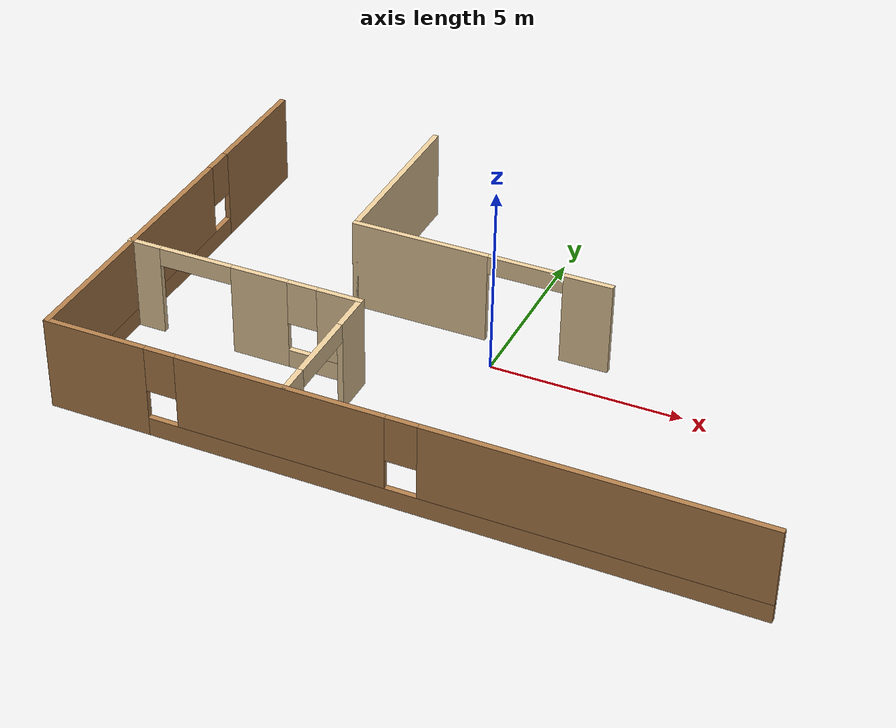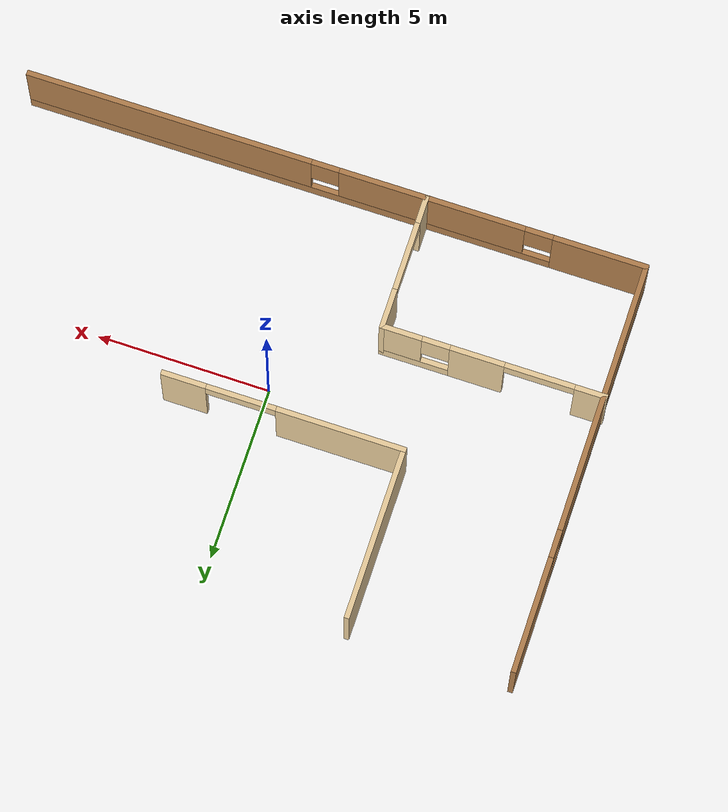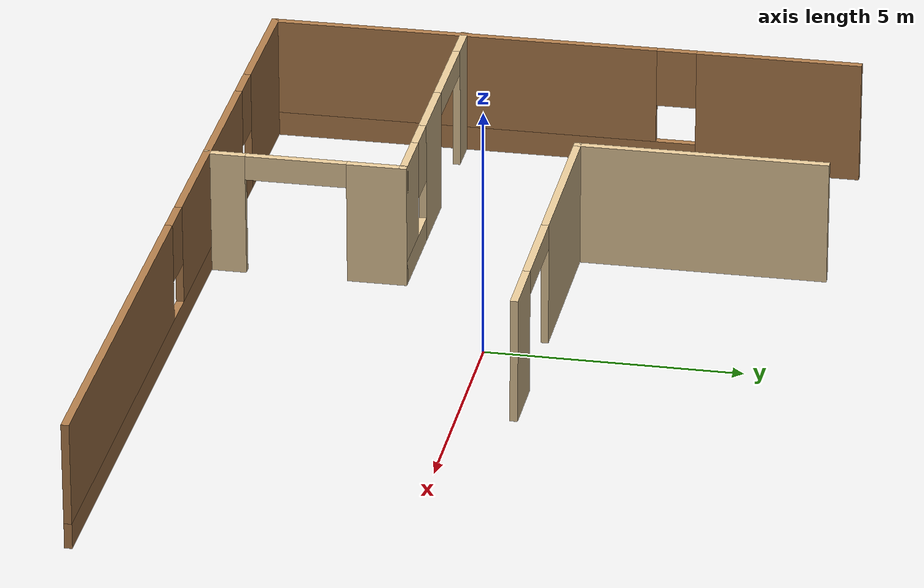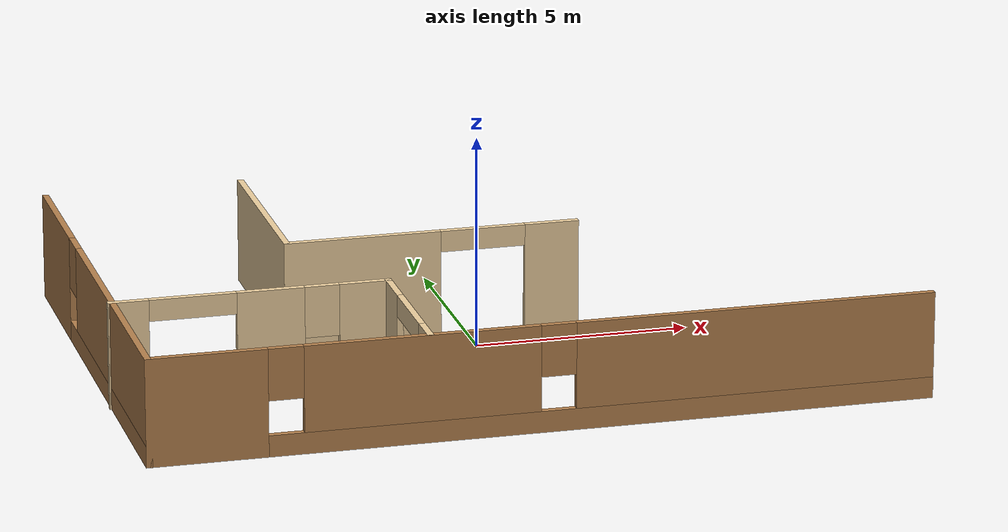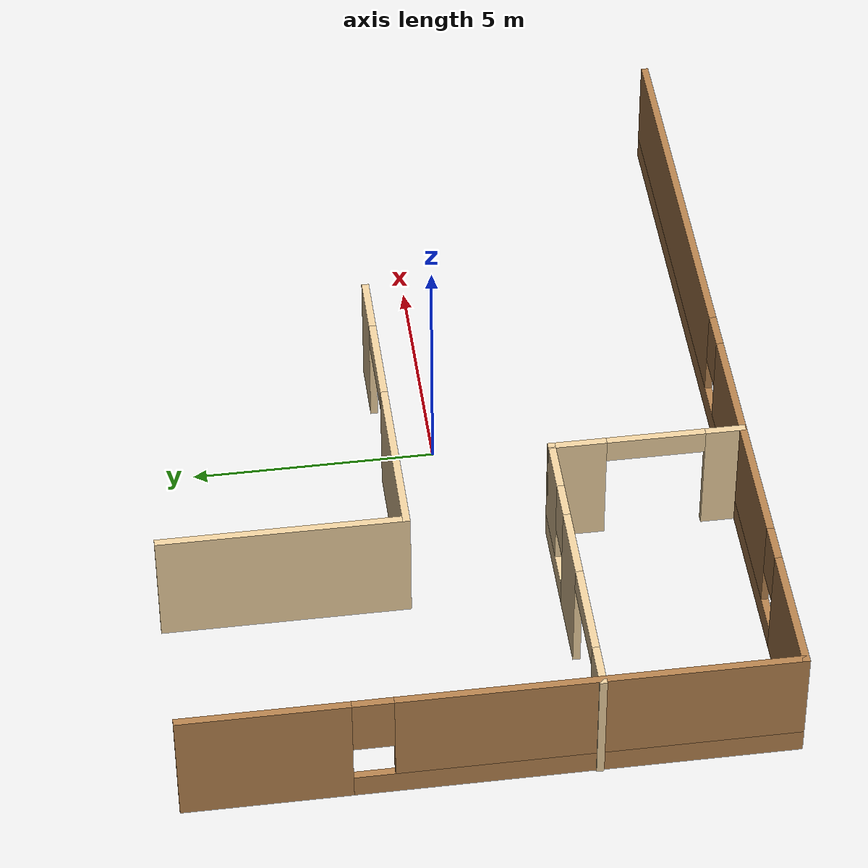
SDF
<sdf version="1.6">
 <model name="mybuilding">
  <link name="Wall_25">
   <pose>-8.90711 0 0 0 0 -1.5708</pose>
   <visual name="Wall_25_Visual_0">
    <pose>-4.33953 0 1.25 0 -0 0</pose>
    <geometry><box><size>3.32095 0.15 2.5</size></box></geometry>
    <material>
     <script><uri>file://media/materials/scripts/gazebo.material</uri><name>Gazebo/Wood</name></script>
     <ambient>1 1 1 1</ambient>
     <shader type="pixel"/>
     <diffuse>1 1 1 1</diffuse>
     <specular>0.2 0.2 0.2 1</specular>
     <emissive>0 0 0 1</emissive>
    </material>
    <meta><layer>0</layer></meta>
   </visual>
   <visual name="Wall_25_Visual_1">
    <pose>1.66047 0 0.25 0 -0 0</pose>
    <geometry><box><size>8.67905 0.15 0.5</size></box></geometry>
    <material>
     <script><uri>file://media/materials/scripts/gazebo.material</uri><name>Gazebo/Wood</name></script>
     <ambient>1 1 1 1</ambient>
     <shader type="pixel"/>
     <diffuse>1 1 1 1</diffuse>
     <specular>0.2 0.2 0.2 1</specular>
     <emissive>0 0 0 1</emissive>
    </material>
    <meta><layer>0</layer></meta>
   </visual>
   <visual name="Wall_25_Visual_2">
    <pose>2.06047 0 1.5 0 -0 0</pose>
    <geometry><box><size>7.87905 0.15 2</size></box></geometry>
    <material>
     <script><uri>file://media/materials/scripts/gazebo.material</uri><name>Gazebo/Wood</name></script>
     <ambient>1 1 1 1</ambient>
     <shader type="pixel"/>
     <diffuse>1 1 1 1</diffuse>
     <specular>0.2 0.2 0.2 1</specular>
     <emissive>0 0 0 1</emissive>
    </material>
    <meta><layer>0</layer></meta>
   </visual>
   <visual name="Wall_25_Visual_3">
    <pose>-2.27905 0 1.9 0 -0 0</pose>
    <geometry><box><size>0.8 0.15 1.2</size></box></geometry>
    <material>
     <script><uri>file://media/materials/scripts/gazebo.material</uri><name>Gazebo/Wood</name></script>
     <ambient>1 1 1 1</ambient>
     <shader type="pixel"/>
     <diffuse>1 1 1 1</diffuse>
     <specular>0.2 0.2 0.2 1</specular>
     <emissive>0 0 0 1</emissive>
    </material>
    <meta><layer>0</layer></meta>
   </visual>
   <collision name="Wall_25_Collision_0">
    <pose>-4.33953 0 1.25 0 -0 0</pose>
    <geometry><box><size>3.32095 0.15 2.5</size></box></geometry>
    <surface>
     <friction>
      <ode><mu>1</mu><mu2>1</mu2><fdir1>0 0 0</fdir1><slip1>0</slip1><slip2>0</slip2></ode>
      <torsional>
       <coefficient>1</coefficient>
       <patch_radius>0</patch_radius>
       <surface_radius>0</surface_radius>
       <use_patch_radius>1</use_patch_radius>
       <ode><slip>0</slip></ode>
      </torsional>
     </friction>
     <bounce><restitution_coefficient>0</restitution_coefficient><threshold>1e+06</threshold></bounce>
     <contact>
      <collide_without_contact>0</collide_without_contact>
      <collide_without_contact_bitmask>1</collide_without_contact_bitmask>
      <collide_bitmask>1</collide_bitmask>
      <ode>
       <soft_cfm>0</soft_cfm>
       <soft_erp>0.2</soft_erp>
       <kp>1e+13</kp>
       <kd>1</kd>
       <max_vel>0.01</max_vel>
       <min_depth>0</min_depth>
      </ode>
      <bullet>
       <split_impulse>1</split_impulse>
       <split_impulse_penetration_threshold>-0.01</split_impulse_penetration_threshold>
       <soft_cfm>0</soft_cfm>
       <soft_erp>0.2</soft_erp>
       <kp>1e+13</kp>
       <kd>1</kd>
      </bullet>
     </contact>
    </surface>
   </collision>
   <collision name="Wall_25_Collision_1">
    <pose>1.66047 0 0.25 0 -0 0</pose>
    <geometry><box><size>8.67905 0.15 0.5</size></box></geometry>
    <surface>
     <friction>
      <ode><mu>1</mu><mu2>1</mu2><fdir1>0 0 0</fdir1><slip1>0</slip1><slip2>0</slip2></ode>
      <torsional>
       <coefficient>1</coefficient>
       <patch_radius>0</patch_radius>
       <surface_radius>0</surface_radius>
       <use_patch_radius>1</use_patch_radius>
       <ode><slip>0</slip></ode>
      </torsional>
     </friction>
     <bounce><restitution_coefficient>0</restitution_coefficient><threshold>1e+06</threshold></bounce>
     <contact>
      <collide_without_contact>0</collide_without_contact>
      <collide_without_contact_bitmask>1</collide_without_contact_bitmask>
      <collide_bitmask>1</collide_bitmask>
      <ode>
       <soft_cfm>0</soft_cfm>
       <soft_erp>0.2</soft_erp>
       <kp>1e+13</kp>
       <kd>1</kd>
       <max_vel>0.01</max_vel>
       <min_depth>0</min_depth>
      </ode>
      <bullet>
       <split_impulse>1</split_impulse>
       <split_impulse_penetration_threshold>-0.01</split_impulse_penetration_threshold>
       <soft_cfm>0</soft_cfm>
       <soft_erp>0.2</soft_erp>
       <kp>1e+13</kp>
       <kd>1</kd>
      </bullet>
     </contact>
    </surface>
   </collision>
   <collision name="Wall_25_Collision_2">
    <pose>2.06047 0 1.5 0 -0 0</pose>
    <geometry><box><size>7.87905 0.15 2</size></box></geometry>
    <surface>
     <friction>
      <ode><mu>1</mu><mu2>1</mu2><fdir1>0 0 0</fdir1><slip1>0</slip1><slip2>0</slip2></ode>
      <torsional>
       <coefficient>1</coefficient>
       <patch_radius>0</patch_radius>
       <surface_radius>0</surface_radius>
       <use_patch_radius>1</use_patch_radius>
       <ode><slip>0</slip></ode>
      </torsional>
     </friction>
     <bounce><restitution_coefficient>0</restitution_coefficient><threshold>1e+06</threshold></bounce>
     <contact>
      <collide_without_contact>0</collide_without_contact>
      <collide_without_contact_bitmask>1</collide_without_contact_bitmask>
      <collide_bitmask>1</collide_bitmask>
      <ode>
       <soft_cfm>0</soft_cfm>
       <soft_erp>0.2</soft_erp>
       <kp>1e+13</kp>
       <kd>1</kd>
       <max_vel>0.01</max_vel>
       <min_depth>0</min_depth>
      </ode>
      <bullet>
       <split_impulse>1</split_impulse>
       <split_impulse_penetration_threshold>-0.01</split_impulse_penetration_threshold>
       <soft_cfm>0</soft_cfm>
       <soft_erp>0.2</soft_erp>
       <kp>1e+13</kp>
       <kd>1</kd>
      </bullet>
     </contact>
    </surface>
   </collision>
   <collision name="Wall_25_Collision_3">
    <pose>-2.27905 0 1.9 0 -0 0</pose>
    <geometry><box><size>0.8 0.15 1.2</size></box></geometry>
    <surface>
     <friction>
      <ode><mu>1</mu><mu2>1</mu2><fdir1>0 0 0</fdir1><slip1>0</slip1><slip2>0</slip2></ode>
      <torsional>
       <coefficient>1</coefficient>
       <patch_radius>0</patch_radius>
       <surface_radius>0</surface_radius>
       <use_patch_radius>1</use_patch_radius>
       <ode><slip>0</slip></ode>
      </torsional>
     </friction>
     <bounce><restitution_coefficient>0</restitution_coefficient><threshold>1e+06</threshold></bounce>
     <contact>
      <collide_without_contact>0</collide_without_contact>
      <collide_without_contact_bitmask>1</collide_without_contact_bitmask>
      <collide_bitmask>1</collide_bitmask>
      <ode>
       <soft_cfm>0</soft_cfm>
       <soft_erp>0.2</soft_erp>
       <kp>1e+13</kp>
       <kd>1</kd>
       <max_vel>0.01</max_vel>
       <min_depth>0</min_depth>
      </ode>
      <bullet>
       <split_impulse>1</split_impulse>
       <split_impulse_penetration_threshold>-0.01</split_impulse_penetration_threshold>
       <soft_cfm>0</soft_cfm>
       <soft_erp>0.2</soft_erp>
       <kp>1e+13</kp>
       <kd>1</kd>
      </bullet>
     </contact>
    </surface>
   </collision>
  </link>
  <link name="Wall_26">
   <pose>0.01789 -5.925 0 0 -0 0</pose>
   <visual name="Wall_26_Visual_0">
    <pose>-7.63172 0 1.25 0 -0 0</pose>
    <geometry><box><size>2.73657 0.15 2.5</size></box></geometry>
    <material>
     <script><uri>file://media/materials/scripts/gazebo.material</uri><name>Gazebo/Wood</name></script>
     <ambient>1 1 1 1</ambient>
     <shader type="pixel"/>
     <diffuse>1 1 1 1</diffuse>
     <specular>0.2 0.2 0.2 1</specular>
     <emissive>0 0 0 1</emissive>
    </material>
    <meta><layer>0</layer></meta>
   </visual>
   <visual name="Wall_26_Visual_1">
    <pose>1.36828 0 0.25 0 -0 0</pose>
    <geometry><box><size>15.2634 0.15 0.5</size></box></geometry>
    <material>
     <script><uri>file://media/materials/scripts/gazebo.material</uri><name>Gazebo/Wood</name></script>
     <ambient>1 1 1 1</ambient>
     <shader type="pixel"/>
     <diffuse>1 1 1 1</diffuse>
     <specular>0.2 0.2 0.2 1</specular>
     <emissive>0 0 0 1</emissive>
    </material>
    <meta><layer>0</layer></meta>
   </visual>
   <visual name="Wall_26_Visual_2">
    <pose>-2.78311 0 1.5 0 -0 0</pose>
    <geometry><box><size>5.36064 0.15 2</size></box></geometry>
    <material>
     <script><uri>file://media/materials/scripts/gazebo.material</uri><name>Gazebo/Wood</name></script>
     <ambient>1 1 1 1</ambient>
     <shader type="pixel"/>
     <diffuse>1 1 1 1</diffuse>
     <specular>0.2 0.2 0.2 1</specular>
     <emissive>0 0 0 1</emissive>
    </material>
    <meta><layer>0</layer></meta>
   </visual>
   <visual name="Wall_26_Visual_3">
    <pose>4.8486 0 1.5 0 -0 0</pose>
    <geometry><box><size>8.3028 0.15 2</size></box></geometry>
    <material>
     <script><uri>file://media/materials/scripts/gazebo.material</uri><name>Gazebo/Wood</name></script>
     <ambient>1 1 1 1</ambient>
     <shader type="pixel"/>
     <diffuse>1 1 1 1</diffuse>
     <specular>0.2 0.2 0.2 1</specular>
     <emissive>0 0 0 1</emissive>
    </material>
    <meta><layer>0</layer></meta>
   </visual>
   <visual name="Wall_26_Visual_4">
    <pose>-5.86343 0 1.9 0 -0 0</pose>
    <geometry><box><size>0.8 0.15 1.2</size></box></geometry>
    <material>
     <script><uri>file://media/materials/scripts/gazebo.material</uri><name>Gazebo/Wood</name></script>
     <ambient>1 1 1 1</ambient>
     <shader type="pixel"/>
     <diffuse>1 1 1 1</diffuse>
     <specular>0.2 0.2 0.2 1</specular>
     <emissive>0 0 0 1</emissive>
    </material>
    <meta><layer>0</layer></meta>
   </visual>
   <visual name="Wall_26_Visual_5">
    <pose>0.297204 0 1.9 0 -0 0</pose>
    <geometry><box><size>0.8 0.15 1.2</size></box></geometry>
    <material>
     <script><uri>file://media/materials/scripts/gazebo.material</uri><name>Gazebo/Wood</name></script>
     <ambient>1 1 1 1</ambient>
     <shader type="pixel"/>
     <diffuse>1 1 1 1</diffuse>
     <specular>0.2 0.2 0.2 1</specular>
     <emissive>0 0 0 1</emissive>
    </material>
    <meta><layer>0</layer></meta>
   </visual>
   <collision name="Wall_26_Collision_0">
    <pose>-7.63172 0 1.25 0 -0 0</pose>
    <geometry><box><size>2.73657 0.15 2.5</size></box></geometry>
    <surface>
     <friction>
      <ode><mu>1</mu><mu2>1</mu2><fdir1>0 0 0</fdir1><slip1>0</slip1><slip2>0</slip2></ode>
      <torsional>
       <coefficient>1</coefficient>
       <patch_radius>0</patch_radius>
       <surface_radius>0</surface_radius>
       <use_patch_radius>1</use_patch_radius>
       <ode><slip>0</slip></ode>
      </torsional>
     </friction>
     <bounce><restitution_coefficient>0</restitution_coefficient><threshold>1e+06</threshold></bounce>
     <contact>
      <collide_without_contact>0</collide_without_contact>
      <collide_without_contact_bitmask>1</collide_without_contact_bitmask>
      <collide_bitmask>1</collide_bitmask>
      <ode>
       <soft_cfm>0</soft_cfm>
       <soft_erp>0.2</soft_erp>
       <kp>1e+13</kp>
       <kd>1</kd>
       <max_vel>0.01</max_vel>
       <min_depth>0</min_depth>
      </ode>
      <bullet>
       <split_impulse>1</split_impulse>
       <split_impulse_penetration_threshold>-0.01</split_impulse_penetration_threshold>
       <soft_cfm>0</soft_cfm>
       <soft_erp>0.2</soft_erp>
       <kp>1e+13</kp>
       <kd>1</kd>
      </bullet>
     </contact>
    </surface>
   </collision>
   <collision name="Wall_26_Collision_1">
    <pose>1.36828 0 0.25 0 -0 0</pose>
    <geometry><box><size>15.2634 0.15 0.5</size></box></geometry>
    <surface>
     <friction>
      <ode><mu>1</mu><mu2>1</mu2><fdir1>0 0 0</fdir1><slip1>0</slip1><slip2>0</slip2></ode>
      <torsional>
       <coefficient>1</coefficient>
       <patch_radius>0</patch_radius>
       <surface_radius>0</surface_radius>
       <use_patch_radius>1</use_patch_radius>
       <ode><slip>0</slip></ode>
      </torsional>
     </friction>
     <bounce><restitution_coefficient>0</restitution_coefficient><threshold>1e+06</threshold></bounce>
     <contact>
      <collide_without_contact>0</collide_without_contact>
      <collide_without_contact_bitmask>1</collide_without_contact_bitmask>
      <collide_bitmask>1</collide_bitmask>
      <ode>
       <soft_cfm>0</soft_cfm>
       <soft_erp>0.2</soft_erp>
       <kp>1e+13</kp>
       <kd>1</kd>
       <max_vel>0.01</max_vel>
       <min_depth>0</min_depth>
      </ode>
      <bullet>
       <split_impulse>1</split_impulse>
       <split_impulse_penetration_threshold>-0.01</split_impulse_penetration_threshold>
       <soft_cfm>0</soft_cfm>
       <soft_erp>0.2</soft_erp>
       <kp>1e+13</kp>
       <kd>1</kd>
      </bullet>
     </contact>
    </surface>
   </collision>
   <collision name="Wall_26_Collision_2">
    <pose>-2.78311 0 1.5 0 -0 0</pose>
    <geometry><box><size>5.36064 0.15 2</size></box></geometry>
    <surface>
     <friction>
      <ode><mu>1</mu><mu2>1</mu2><fdir1>0 0 0</fdir1><slip1>0</slip1><slip2>0</slip2></ode>
      <torsional>
       <coefficient>1</coefficient>
       <patch_radius>0</patch_radius>
       <surface_radius>0</surface_radius>
       <use_patch_radius>1</use_patch_radius>
       <ode><slip>0</slip></ode>
      </torsional>
     </friction>
     <bounce><restitution_coefficient>0</restitution_coefficient><threshold>1e+06</threshold></bounce>
     <contact>
      <collide_without_contact>0</collide_without_contact>
      <collide_without_contact_bitmask>1</collide_without_contact_bitmask>
      <collide_bitmask>1</collide_bitmask>
      <ode>
       <soft_cfm>0</soft_cfm>
       <soft_erp>0.2</soft_erp>
       <kp>1e+13</kp>
       <kd>1</kd>
       <max_vel>0.01</max_vel>
       <min_depth>0</min_depth>
      </ode>
      <bullet>
       <split_impulse>1</split_impulse>
       <split_impulse_penetration_threshold>-0.01</split_impulse_penetration_threshold>
       <soft_cfm>0</soft_cfm>
       <soft_erp>0.2</soft_erp>
       <kp>1e+13</kp>
       <kd>1</kd>
      </bullet>
     </contact>
    </surface>
   </collision>
   <collision name="Wall_26_Collision_3">
    <pose>4.8486 0 1.5 0 -0 0</pose>
    <geometry><box><size>8.3028 0.15 2</size></box></geometry>
    <surface>
     <friction>
      <ode><mu>1</mu><mu2>1</mu2><fdir1>0 0 0</fdir1><slip1>0</slip1><slip2>0</slip2></ode>
      <torsional>
       <coefficient>1</coefficient>
       <patch_radius>0</patch_radius>
       <surface_radius>0</surface_radius>
       <use_patch_radius>1</use_patch_radius>
       <ode><slip>0</slip></ode>
      </torsional>
     </friction>
     <bounce><restitution_coefficient>0</restitution_coefficient><threshold>1e+06</threshold></bounce>
     <contact>
      <collide_without_contact>0</collide_without_contact>
      <collide_without_contact_bitmask>1</collide_without_contact_bitmask>
      <collide_bitmask>1</collide_bitmask>
      <ode>
       <soft_cfm>0</soft_cfm>
       <soft_erp>0.2</soft_erp>
       <kp>1e+13</kp>
       <kd>1</kd>
       <max_vel>0.01</max_vel>
       <min_depth>0</min_depth>
      </ode>
      <bullet>
       <split_impulse>1</split_impulse>
       <split_impulse_penetration_threshold>-0.01</split_impulse_penetration_threshold>
       <soft_cfm>0</soft_cfm>
       <soft_erp>0.2</soft_erp>
       <kp>1e+13</kp>
       <kd>1</kd>
      </bullet>
     </contact>
    </surface>
   </collision>
   <collision name="Wall_26_Collision_4">
    <pose>-5.86343 0 1.9 0 -0 0</pose>
    <geometry><box><size>0.8 0.15 1.2</size></box></geometry>
    <surface>
     <friction>
      <ode><mu>1</mu><mu2>1</mu2><fdir1>0 0 0</fdir1><slip1>0</slip1><slip2>0</slip2></ode>
      <torsional>
       <coefficient>1</coefficient>
       <patch_radius>0</patch_radius>
       <surface_radius>0</surface_radius>
       <use_patch_radius>1</use_patch_radius>
       <ode><slip>0</slip></ode>
      </torsional>
     </friction>
     <bounce><restitution_coefficient>0</restitution_coefficient><threshold>1e+06</threshold></bounce>
     <contact>
      <collide_without_contact>0</collide_without_contact>
      <collide_without_contact_bitmask>1</collide_without_contact_bitmask>
      <collide_bitmask>1</collide_bitmask>
      <ode>
       <soft_cfm>0</soft_cfm>
       <soft_erp>0.2</soft_erp>
       <kp>1e+13</kp>
       <kd>1</kd>
       <max_vel>0.01</max_vel>
       <min_depth>0</min_depth>
      </ode>
      <bullet>
       <split_impulse>1</split_impulse>
       <split_impulse_penetration_threshold>-0.01</split_impulse_penetration_threshold>
       <soft_cfm>0</soft_cfm>
       <soft_erp>0.2</soft_erp>
       <kp>1e+13</kp>
       <kd>1</kd>
      </bullet>
     </contact>
    </surface>
   </collision>
   <collision name="Wall_26_Collision_5">
    <pose>0.297204 0 1.9 0 -0 0</pose>
    <geometry><box><size>0.8 0.15 1.2</size></box></geometry>
    <surface>
     <friction>
      <ode><mu>1</mu><mu2>1</mu2><fdir1>0 0 0</fdir1><slip1>0</slip1><slip2>0</slip2></ode>
      <torsional>
       <coefficient>1</coefficient>
       <patch_radius>0</patch_radius>
       <surface_radius>0</surface_radius>
       <use_patch_radius>1</use_patch_radius>
       <ode><slip>0</slip></ode>
      </torsional>
     </friction>
     <bounce><restitution_coefficient>0</restitution_coefficient><threshold>1e+06</threshold></bounce>
     <contact>
      <collide_without_contact>0</collide_without_contact>
      <collide_without_contact_bitmask>1</collide_without_contact_bitmask>
      <collide_bitmask>1</collide_bitmask>
      <ode>
       <soft_cfm>0</soft_cfm>
       <soft_erp>0.2</soft_erp>
       <kp>1e+13</kp>
       <kd>1</kd>
       <max_vel>0.01</max_vel>
       <min_depth>0</min_depth>
      </ode>
      <bullet>
       <split_impulse>1</split_impulse>
       <split_impulse_penetration_threshold>-0.01</split_impulse_penetration_threshold>
       <soft_cfm>0</soft_cfm>
       <soft_erp>0.2</soft_erp>
       <kp>1e+13</kp>
       <kd>1</kd>
      </bullet>
     </contact>
    </surface>
   </collision>
  </link>
  <link name="Wall_31">
   <pose>-5.76789 -2.05427 0 0 -0 0</pose>
   <visual name="Wall_31_Visual_0">
    <pose>-2.78613 0 1.25 0 -0 0</pose>
    <geometry><box><size>0.92775 0.15 2.5</size></box></geometry>
    <material>
     <script><uri>file://media/materials/scripts/gazebo.material</uri><name>Gazebo/Grey</name></script>
     <ambient>0.921569 0.807843 0.615686 1</ambient>
     <shader type="pixel"/>
     <diffuse>0.7 0.7 0.7 1</diffuse>
     <specular>0.01 0.01 0.01 1</specular>
     <emissive>0 0 0 1</emissive>
    </material>
    <meta><layer>0</layer></meta>
   </visual>
   <visual name="Wall_31_Visual_1">
    <pose>0.455693 0 1.25 0 -0 0</pose>
    <geometry><box><size>1.55589 0.15 2.5</size></box></geometry>
    <material>
     <script><uri>file://media/materials/scripts/gazebo.material</uri><name>Gazebo/Grey</name></script>
     <ambient>0.921569 0.807843 0.615686 1</ambient>
     <shader type="pixel"/>
     <diffuse>0.7 0.7 0.7 1</diffuse>
     <specular>0.01 0.01 0.01 1</specular>
     <emissive>0 0 0 1</emissive>
    </material>
    <meta><layer>0</layer></meta>
   </visual>
   <visual name="Wall_31_Visual_2">
    <pose>2.24182 0 0.25 0 -0 0</pose>
    <geometry><box><size>2.01636 0.15 0.5</size></box></geometry>
    <material>
     <script><uri>file://media/materials/scripts/gazebo.material</uri><name>Gazebo/Grey</name></script>
     <ambient>0.921569 0.807843 0.615686 1</ambient>
     <shader type="pixel"/>
     <diffuse>0.7 0.7 0.7 1</diffuse>
     <specular>0.01 0.01 0.01 1</specular>
     <emissive>0 0 0 1</emissive>
    </material>
    <meta><layer>0</layer></meta>
   </visual>
   <visual name="Wall_31_Visual_3">
    <pose>2.64182 0 1.5 0 -0 0</pose>
    <geometry><box><size>1.21636 0.15 2</size></box></geometry>
    <material>
     <script><uri>file://media/materials/scripts/gazebo.material</uri><name>Gazebo/Grey</name></script>
     <ambient>0.921569 0.807843 0.615686 1</ambient>
     <shader type="pixel"/>
     <diffuse>0.7 0.7 0.7 1</diffuse>
     <specular>0.01 0.01 0.01 1</specular>
     <emissive>0 0 0 1</emissive>
    </material>
    <meta><layer>0</layer></meta>
   </visual>
   <visual name="Wall_31_Visual_4">
    <pose>1.63364 0 1.9 0 -0 0</pose>
    <geometry><box><size>0.8 0.15 1.2</size></box></geometry>
    <material>
     <script><uri>file://media/materials/scripts/gazebo.material</uri><name>Gazebo/Grey</name></script>
     <ambient>0.921569 0.807843 0.615686 1</ambient>
     <shader type="pixel"/>
     <diffuse>0.7 0.7 0.7 1</diffuse>
     <specular>0.01 0.01 0.01 1</specular>
     <emissive>0 0 0 1</emissive>
    </material>
    <meta><layer>0</layer></meta>
   </visual>
   <visual name="Wall_31_Visual_5">
    <pose>-1.32225 0 2.25 0 -0 0</pose>
    <geometry><box><size>2 0.15 0.5</size></box></geometry>
    <material>
     <script><uri>file://media/materials/scripts/gazebo.material</uri><name>Gazebo/Grey</name></script>
     <ambient>0.921569 0.807843 0.615686 1</ambient>
     <shader type="pixel"/>
     <diffuse>0.7 0.7 0.7 1</diffuse>
     <specular>0.01 0.01 0.01 1</specular>
     <emissive>0 0 0 1</emissive>
    </material>
    <meta><layer>0</layer></meta>
   </visual>
   <collision name="Wall_31_Collision_0">
    <pose>-2.78613 0 1.25 0 -0 0</pose>
    <geometry><box><size>0.92775 0.15 2.5</size></box></geometry>
    <surface>
     <friction>
      <ode><mu>1</mu><mu2>1</mu2><fdir1>0 0 0</fdir1><slip1>0</slip1><slip2>0</slip2></ode>
      <torsional>
       <coefficient>1</coefficient>
       <patch_radius>0</patch_radius>
       <surface_radius>0</surface_radius>
       <use_patch_radius>1</use_patch_radius>
       <ode><slip>0</slip></ode>
      </torsional>
     </friction>
     <bounce><restitution_coefficient>0</restitution_coefficient><threshold>1e+06</threshold></bounce>
     <contact>
      <collide_without_contact>0</collide_without_contact>
      <collide_without_contact_bitmask>1</collide_without_contact_bitmask>
      <collide_bitmask>1</collide_bitmask>
      <ode>
       <soft_cfm>0</soft_cfm>
       <soft_erp>0.2</soft_erp>
       <kp>1e+13</kp>
       <kd>1</kd>
       <max_vel>0.01</max_vel>
       <min_depth>0</min_depth>
      </ode>
      <bullet>
       <split_impulse>1</split_impulse>
       <split_impulse_penetration_threshold>-0.01</split_impulse_penetration_threshold>
       <soft_cfm>0</soft_cfm>
       <soft_erp>0.2</soft_erp>
       <kp>1e+13</kp>
       <kd>1</kd>
      </bullet>
     </contact>
    </surface>
   </collision>
   <collision name="Wall_31_Collision_1">
    <pose>0.455693 0 1.25 0 -0 0</pose>
    <geometry><box><size>1.55589 0.15 2.5</size></box></geometry>
    <surface>
     <friction>
      <ode><mu>1</mu><mu2>1</mu2><fdir1>0 0 0</fdir1><slip1>0</slip1><slip2>0</slip2></ode>
      <torsional>
       <coefficient>1</coefficient>
       <patch_radius>0</patch_radius>
       <surface_radius>0</surface_radius>
       <use_patch_radius>1</use_patch_radius>
       <ode><slip>0</slip></ode>
      </torsional>
     </friction>
     <bounce><restitution_coefficient>0</restitution_coefficient><threshold>1e+06</threshold></bounce>
     <contact>
      <collide_without_contact>0</collide_without_contact>
      <collide_without_contact_bitmask>1</collide_without_contact_bitmask>
      <collide_bitmask>1</collide_bitmask>
      <ode>
       <soft_cfm>0</soft_cfm>
       <soft_erp>0.2</soft_erp>
       <kp>1e+13</kp>
       <kd>1</kd>
       <max_vel>0.01</max_vel>
       <min_depth>0</min_depth>
      </ode>
      <bullet>
       <split_impulse>1</split_impulse>
       <split_impulse_penetration_threshold>-0.01</split_impulse_penetration_threshold>
       <soft_cfm>0</soft_cfm>
       <soft_erp>0.2</soft_erp>
       <kp>1e+13</kp>
       <kd>1</kd>
      </bullet>
     </contact>
    </surface>
   </collision>
   <collision name="Wall_31_Collision_2">
    <pose>2.24182 0 0.25 0 -0 0</pose>
    <geometry><box><size>2.01636 0.15 0.5</size></box></geometry>
    <surface>
     <friction>
      <ode><mu>1</mu><mu2>1</mu2><fdir1>0 0 0</fdir1><slip1>0</slip1><slip2>0</slip2></ode>
      <torsional>
       <coefficient>1</coefficient>
       <patch_radius>0</patch_radius>
       <surface_radius>0</surface_radius>
       <use_patch_radius>1</use_patch_radius>
       <ode><slip>0</slip></ode>
      </torsional>
     </friction>
     <bounce><restitution_coefficient>0</restitution_coefficient><threshold>1e+06</threshold></bounce>
     <contact>
      <collide_without_contact>0</collide_without_contact>
      <collide_without_contact_bitmask>1</collide_without_contact_bitmask>
      <collide_bitmask>1</collide_bitmask>
      <ode>
       <soft_cfm>0</soft_cfm>
       <soft_erp>0.2</soft_erp>
       <kp>1e+13</kp>
       <kd>1</kd>
       <max_vel>0.01</max_vel>
       <min_depth>0</min_depth>
      </ode>
      <bullet>
       <split_impulse>1</split_impulse>
       <split_impulse_penetration_threshold>-0.01</split_impulse_penetration_threshold>
       <soft_cfm>0</soft_cfm>
       <soft_erp>0.2</soft_erp>
       <kp>1e+13</kp>
       <kd>1</kd>
      </bullet>
     </contact>
    </surface>
   </collision>
   <collision name="Wall_31_Collision_3">
    <pose>2.64182 0 1.5 0 -0 0</pose>
    <geometry><box><size>1.21636 0.15 2</size></box></geometry>
    <surface>
     <friction>
      <ode><mu>1</mu><mu2>1</mu2><fdir1>0 0 0</fdir1><slip1>0</slip1><slip2>0</slip2></ode>
      <torsional>
       <coefficient>1</coefficient>
       <patch_radius>0</patch_radius>
       <surface_radius>0</surface_radius>
       <use_patch_radius>1</use_patch_radius>
       <ode><slip>0</slip></ode>
      </torsional>
     </friction>
     <bounce><restitution_coefficient>0</restitution_coefficient><threshold>1e+06</threshold></bounce>
     <contact>
      <collide_without_contact>0</collide_without_contact>
      <collide_without_contact_bitmask>1</collide_without_contact_bitmask>
      <collide_bitmask>1</collide_bitmask>
      <ode>
       <soft_cfm>0</soft_cfm>
       <soft_erp>0.2</soft_erp>
       <kp>1e+13</kp>
       <kd>1</kd>
       <max_vel>0.01</max_vel>
       <min_depth>0</min_depth>
      </ode>
      <bullet>
       <split_impulse>1</split_impulse>
       <split_impulse_penetration_threshold>-0.01</split_impulse_penetration_threshold>
       <soft_cfm>0</soft_cfm>
       <soft_erp>0.2</soft_erp>
       <kp>1e+13</kp>
       <kd>1</kd>
      </bullet>
     </contact>
    </surface>
   </collision>
   <collision name="Wall_31_Collision_5">
    <pose>-1.32225 0 2.25 0 -0 0</pose>
    <geometry><box><size>2 0.15 0.5</size></box></geometry>
    <surface>
     <friction>
      <ode><mu>1</mu><mu2>1</mu2><fdir1>0 0 0</fdir1><slip1>0</slip1><slip2>0</slip2></ode>
      <torsional>
       <coefficient>1</coefficient>
       <patch_radius>0</patch_radius>
       <surface_radius>0</surface_radius>
       <use_patch_radius>1</use_patch_radius>
       <ode><slip>0</slip></ode>
      </torsional>
     </friction>
     <bounce><restitution_coefficient>0</restitution_coefficient><threshold>1e+06</threshold></bounce>
     <contact>
      <collide_without_contact>0</collide_without_contact>
      <collide_without_contact_bitmask>1</collide_without_contact_bitmask>
      <collide_bitmask>1</collide_bitmask>
      <ode>
       <soft_cfm>0</soft_cfm>
       <soft_erp>0.2</soft_erp>
       <kp>1e+13</kp>
       <kd>1</kd>
       <max_vel>0.01</max_vel>
       <min_depth>0</min_depth>
      </ode>
      <bullet>
       <split_impulse>1</split_impulse>
       <split_impulse_penetration_threshold>-0.01</split_impulse_penetration_threshold>
       <soft_cfm>0</soft_cfm>
       <soft_erp>0.2</soft_erp>
       <kp>1e+13</kp>
       <kd>1</kd>
      </bullet>
     </contact>
    </surface>
   </collision>
   <collision name="Wall_31_Collision_4">
    <pose>1.63364 0 1.9 0 -0 0</pose>
    <geometry><box><size>0.8 0.15 1.2</size></box></geometry>
    <surface>
     <friction>
      <ode><mu>1</mu><mu2>1</mu2><fdir1>0 0 0</fdir1><slip1>0</slip1><slip2>0</slip2></ode>
      <torsional>
       <coefficient>1</coefficient>
       <patch_radius>0</patch_radius>
       <surface_radius>0</surface_radius>
       <use_patch_radius>1</use_patch_radius>
       <ode><slip>0</slip></ode>
      </torsional>
     </friction>
     <bounce><restitution_coefficient>0</restitution_coefficient><threshold>1e+06</threshold></bounce>
     <contact>
      <collide_without_contact>0</collide_without_contact>
      <collide_without_contact_bitmask>1</collide_without_contact_bitmask>
      <collide_bitmask>1</collide_bitmask>
      <ode>
       <soft_cfm>0</soft_cfm>
       <soft_erp>0.2</soft_erp>
       <kp>1e+13</kp>
       <kd>1</kd>
       <max_vel>0.01</max_vel>
       <min_depth>0</min_depth>
      </ode>
      <bullet>
       <split_impulse>1</split_impulse>
       <split_impulse_penetration_threshold>-0.01</split_impulse_penetration_threshold>
       <soft_cfm>0</soft_cfm>
       <soft_erp>0.2</soft_erp>
       <kp>1e+13</kp>
       <kd>1</kd>
      </bullet>
     </contact>
    </surface>
   </collision>
  </link>
  <link name="Wall_32">
   <pose>-2.59289 -3.97927 0 0 0 -1.5708</pose>
   <visual name="Wall_32_Visual_0">
    <pose>-1.40883 0 1.25 0 -0 0</pose>
    <geometry><box><size>1.18234 0.15 2.5</size></box></geometry>
    <material>
     <script><uri>file://media/materials/scripts/gazebo.material</uri><name>Gazebo/Grey</name></script>
     <ambient>0.921569 0.807843 0.615686 1</ambient>
     <shader type="pixel"/>
     <diffuse>0.7 0.7 0.7 1</diffuse>
     <specular>0.01 0.01 0.01 1</specular>
     <emissive>0 0 0 1</emissive>
    </material>
    <meta><layer>0</layer></meta>
   </visual>
   <visual name="Wall_32_Visual_1">
    <pose>1.59117 0 1.25 0 -0 0</pose>
    <geometry><box><size>0.817657 0.15 2.5</size></box></geometry>
    <material>
     <script><uri>file://media/materials/scripts/gazebo.material</uri><name>Gazebo/Grey</name></script>
     <ambient>0.921569 0.807843 0.615686 1</ambient>
     <shader type="pixel"/>
     <diffuse>0.7 0.7 0.7 1</diffuse>
     <specular>0.01 0.01 0.01 1</specular>
     <emissive>0 0 0 1</emissive>
    </material>
    <meta><layer>0</layer></meta>
   </visual>
   <visual name="Wall_32_Visual_2">
    <pose>0.182343 0 2.25 0 -0 0</pose>
    <geometry><box><size>2 0.15 0.5</size></box></geometry>
    <material>
     <script><uri>file://media/materials/scripts/gazebo.material</uri><name>Gazebo/Grey</name></script>
     <ambient>0.921569 0.807843 0.615686 1</ambient>
     <shader type="pixel"/>
     <diffuse>0.7 0.7 0.7 1</diffuse>
     <specular>0.01 0.01 0.01 1</specular>
     <emissive>0 0 0 1</emissive>
    </material>
    <meta><layer>0</layer></meta>
   </visual>
   <collision name="Wall_32_Collision_0">
    <pose>-1.40883 0 1.25 0 -0 0</pose>
    <geometry><box><size>1.18234 0.15 2.5</size></box></geometry>
    <surface>
     <friction>
      <ode><mu>1</mu><mu2>1</mu2><fdir1>0 0 0</fdir1><slip1>0</slip1><slip2>0</slip2></ode>
      <torsional>
       <coefficient>1</coefficient>
       <patch_radius>0</patch_radius>
       <surface_radius>0</surface_radius>
       <use_patch_radius>1</use_patch_radius>
       <ode><slip>0</slip></ode>
      </torsional>
     </friction>
     <bounce><restitution_coefficient>0</restitution_coefficient><threshold>1e+06</threshold></bounce>
     <contact>
      <collide_without_contact>0</collide_without_contact>
      <collide_without_contact_bitmask>1</collide_without_contact_bitmask>
      <collide_bitmask>1</collide_bitmask>
      <ode>
       <soft_cfm>0</soft_cfm>
       <soft_erp>0.2</soft_erp>
       <kp>1e+13</kp>
       <kd>1</kd>
       <max_vel>0.01</max_vel>
       <min_depth>0</min_depth>
      </ode>
      <bullet>
       <split_impulse>1</split_impulse>
       <split_impulse_penetration_threshold>-0.01</split_impulse_penetration_threshold>
       <soft_cfm>0</soft_cfm>
       <soft_erp>0.2</soft_erp>
       <kp>1e+13</kp>
       <kd>1</kd>
      </bullet>
     </contact>
    </surface>
   </collision>
   <collision name="Wall_32_Collision_1">
    <pose>1.59117 0 1.25 0 -0 0</pose>
    <geometry><box><size>0.817657 0.15 2.5</size></box></geometry>
    <surface>
     <friction>
      <ode><mu>1</mu><mu2>1</mu2><fdir1>0 0 0</fdir1><slip1>0</slip1><slip2>0</slip2></ode>
      <torsional>
       <coefficient>1</coefficient>
       <patch_radius>0</patch_radius>
       <surface_radius>0</surface_radius>
       <use_patch_radius>1</use_patch_radius>
       <ode><slip>0</slip></ode>
      </torsional>
     </friction>
     <bounce><restitution_coefficient>0</restitution_coefficient><threshold>1e+06</threshold></bounce>
     <contact>
      <collide_without_contact>0</collide_without_contact>
      <collide_without_contact_bitmask>1</collide_without_contact_bitmask>
      <collide_bitmask>1</collide_bitmask>
      <ode>
       <soft_cfm>0</soft_cfm>
       <soft_erp>0.2</soft_erp>
       <kp>1e+13</kp>
       <kd>1</kd>
       <max_vel>0.01</max_vel>
       <min_depth>0</min_depth>
      </ode>
      <bullet>
       <split_impulse>1</split_impulse>
       <split_impulse_penetration_threshold>-0.01</split_impulse_penetration_threshold>
       <soft_cfm>0</soft_cfm>
       <soft_erp>0.2</soft_erp>
       <kp>1e+13</kp>
       <kd>1</kd>
      </bullet>
     </contact>
    </surface>
   </collision>
   <collision name="Wall_32_Collision_2">
    <pose>0.182343 0 2.25 0 -0 0</pose>
    <geometry><box><size>2 0.15 0.5</size></box></geometry>
    <surface>
     <friction>
      <ode><mu>1</mu><mu2>1</mu2><fdir1>0 0 0</fdir1><slip1>0</slip1><slip2>0</slip2></ode>
      <torsional>
       <coefficient>1</coefficient>
       <patch_radius>0</patch_radius>
       <surface_radius>0</surface_radius>
       <use_patch_radius>1</use_patch_radius>
       <ode><slip>0</slip></ode>
      </torsional>
     </friction>
     <bounce><restitution_coefficient>0</restitution_coefficient><threshold>1e+06</threshold></bounce>
     <contact>
      <collide_without_contact>0</collide_without_contact>
      <collide_without_contact_bitmask>1</collide_without_contact_bitmask>
      <collide_bitmask>1</collide_bitmask>
      <ode>
       <soft_cfm>0</soft_cfm>
       <soft_erp>0.2</soft_erp>
       <kp>1e+13</kp>
       <kd>1</kd>
       <max_vel>0.01</max_vel>
       <min_depth>0</min_depth>
      </ode>
      <bullet>
       <split_impulse>1</split_impulse>
       <split_impulse_penetration_threshold>-0.01</split_impulse_penetration_threshold>
       <soft_cfm>0</soft_cfm>
       <soft_erp>0.2</soft_erp>
       <kp>1e+13</kp>
       <kd>1</kd>
      </bullet>
     </contact>
    </surface>
   </collision>
  </link>
  <link name="Wall_35">
   <pose>-4.2276 3.49443 0 0 0 -1.5708</pose>
   <visual name="Wall_35_Visual">
    <pose>0 0 1.25 0 -0 0</pose>
    <geometry><box><size>5 0.15 2.5</size></box></geometry>
    <material>
     <script><uri>file://media/materials/scripts/gazebo.material</uri><name>Gazebo/Grey</name></script>
     <ambient>0.921569 0.807843 0.615686 1</ambient>
     <shader type="pixel"/>
     <diffuse>0.7 0.7 0.7 1</diffuse>
     <specular>0.01 0.01 0.01 1</specular>
     <emissive>0 0 0 1</emissive>
    </material>
    <meta><layer>0</layer></meta>
   </visual>
   <collision name="Wall_35_Collision">
    <pose>0 0 1.25 0 -0 0</pose>
    <geometry><box><size>5 0.15 2.5</size></box></geometry>
    <surface>
     <friction>
      <ode><mu>1</mu><mu2>1</mu2><fdir1>0 0 0</fdir1><slip1>0</slip1><slip2>0</slip2></ode>
      <torsional>
       <coefficient>1</coefficient>
       <patch_radius>0</patch_radius>
       <surface_radius>0</surface_radius>
       <use_patch_radius>1</use_patch_radius>
       <ode><slip>0</slip></ode>
      </torsional>
     </friction>
     <bounce><restitution_coefficient>0</restitution_coefficient><threshold>1e+06</threshold></bounce>
     <contact>
      <collide_without_contact>0</collide_without_contact>
      <collide_without_contact_bitmask>1</collide_without_contact_bitmask>
      <collide_bitmask>1</collide_bitmask>
      <ode>
       <soft_cfm>0</soft_cfm>
       <soft_erp>0.2</soft_erp>
       <kp>1e+13</kp>
       <kd>1</kd>
       <max_vel>0.01</max_vel>
       <min_depth>0</min_depth>
      </ode>
      <bullet>
       <split_impulse>1</split_impulse>
       <split_impulse_penetration_threshold>-0.01</split_impulse_penetration_threshold>
       <soft_cfm>0</soft_cfm>
       <soft_erp>0.2</soft_erp>
       <kp>1e+13</kp>
       <kd>1</kd>
      </bullet>
     </contact>
    </surface>
   </collision>
  </link>
  <link name="Wall_36">
   <pose>-0.802597 1.06943 0 0 -0 0</pose>
   <visual name="Wall_36_Visual_0">
    <pose>-1.64448 0 1.25 0 -0 0</pose>
    <geometry><box><size>3.71103 0.15 2.5</size></box></geometry>
    <material>
     <script><uri>file://media/materials/scripts/gazebo.material</uri><name>Gazebo/Grey</name></script>
     <ambient>0.921569 0.807843 0.615686 1</ambient>
     <shader type="pixel"/>
     <diffuse>0.7 0.7 0.7 1</diffuse>
     <specular>0.01 0.01 0.01 1</specular>
     <emissive>0 0 0 1</emissive>
    </material>
    <meta><layer>0</layer></meta>
   </visual>
   <visual name="Wall_36_Visual_1">
    <pose>2.85552 0 1.25 0 -0 0</pose>
    <geometry><box><size>1.28897 0.15 2.5</size></box></geometry>
    <material>
     <script><uri>file://media/materials/scripts/gazebo.material</uri><name>Gazebo/Grey</name></script>
     <ambient>0.921569 0.807843 0.615686 1</ambient>
     <shader type="pixel"/>
     <diffuse>0.7 0.7 0.7 1</diffuse>
     <specular>0.01 0.01 0.01 1</specular>
     <emissive>0 0 0 1</emissive>
    </material>
    <meta><layer>0</layer></meta>
   </visual>
   <visual name="Wall_36_Visual_2">
    <pose>1.21103 0 2.25 0 -0 0</pose>
    <geometry><box><size>2 0.15 0.5</size></box></geometry>
    <material>
     <script><uri>file://media/materials/scripts/gazebo.material</uri><name>Gazebo/Grey</name></script>
     <ambient>0.921569 0.807843 0.615686 1</ambient>
     <shader type="pixel"/>
     <diffuse>0.7 0.7 0.7 1</diffuse>
     <specular>0.01 0.01 0.01 1</specular>
     <emissive>0 0 0 1</emissive>
    </material>
    <meta><layer>0</layer></meta>
   </visual>
   <collision name="Wall_36_Collision_0">
    <pose>-1.64448 0 1.25 0 -0 0</pose>
    <geometry><box><size>3.71103 0.15 2.5</size></box></geometry>
    <surface>
     <friction>
      <ode><mu>1</mu><mu2>1</mu2><fdir1>0 0 0</fdir1><slip1>0</slip1><slip2>0</slip2></ode>
      <torsional>
       <coefficient>1</coefficient>
       <patch_radius>0</patch_radius>
       <surface_radius>0</surface_radius>
       <use_patch_radius>1</use_patch_radius>
       <ode><slip>0</slip></ode>
      </torsional>
     </friction>
     <bounce><restitution_coefficient>0</restitution_coefficient><threshold>1e+06</threshold></bounce>
     <contact>
      <collide_without_contact>0</collide_without_contact>
      <collide_without_contact_bitmask>1</collide_without_contact_bitmask>
      <collide_bitmask>1</collide_bitmask>
      <ode>
       <soft_cfm>0</soft_cfm>
       <soft_erp>0.2</soft_erp>
       <kp>1e+13</kp>
       <kd>1</kd>
       <max_vel>0.01</max_vel>
       <min_depth>0</min_depth>
      </ode>
      <bullet>
       <split_impulse>1</split_impulse>
       <split_impulse_penetration_threshold>-0.01</split_impulse_penetration_threshold>
       <soft_cfm>0</soft_cfm>
       <soft_erp>0.2</soft_erp>
       <kp>1e+13</kp>
       <kd>1</kd>
      </bullet>
     </contact>
    </surface>
   </collision>
   <collision name="Wall_36_Collision_1">
    <pose>2.85552 0 1.25 0 -0 0</pose>
    <geometry><box><size>1.28897 0.15 2.5</size></box></geometry>
    <surface>
     <friction>
      <ode><mu>1</mu><mu2>1</mu2><fdir1>0 0 0</fdir1><slip1>0</slip1><slip2>0</slip2></ode>
      <torsional>
       <coefficient>1</coefficient>
       <patch_radius>0</patch_radius>
       <surface_radius>0</surface_radius>
       <use_patch_radius>1</use_patch_radius>
       <ode><slip>0</slip></ode>
      </torsional>
     </friction>
     <bounce><restitution_coefficient>0</restitution_coefficient><threshold>1e+06</threshold></bounce>
     <contact>
      <collide_without_contact>0</collide_without_contact>
      <collide_without_contact_bitmask>1</collide_without_contact_bitmask>
      <collide_bitmask>1</collide_bitmask>
      <ode>
       <soft_cfm>0</soft_cfm>
       <soft_erp>0.2</soft_erp>
       <kp>1e+13</kp>
       <kd>1</kd>
       <max_vel>0.01</max_vel>
       <min_depth>0</min_depth>
      </ode>
      <bullet>
       <split_impulse>1</split_impulse>
       <split_impulse_penetration_threshold>-0.01</split_impulse_penetration_threshold>
       <soft_cfm>0</soft_cfm>
       <soft_erp>0.2</soft_erp>
       <kp>1e+13</kp>
       <kd>1</kd>
      </bullet>
     </contact>
    </surface>
   </collision>
   <collision name="Wall_36_Collision_2">
    <pose>1.21103 0 2.25 0 -0 0</pose>
    <geometry><box><size>2 0.15 0.5</size></box></geometry>
    <surface>
     <friction>
      <ode><mu>1</mu><mu2>1</mu2><fdir1>0 0 0</fdir1><slip1>0</slip1><slip2>0</slip2></ode>
      <torsional>
       <coefficient>1</coefficient>
       <patch_radius>0</patch_radius>
       <surface_radius>0</surface_radius>
       <use_patch_radius>1</use_patch_radius>
       <ode><slip>0</slip></ode>
      </torsional>
     </friction>
     <bounce><restitution_coefficient>0</restitution_coefficient><threshold>1e+06</threshold></bounce>
     <contact>
      <collide_without_contact>0</collide_without_contact>
      <collide_without_contact_bitmask>1</collide_without_contact_bitmask>
      <collide_bitmask>1</collide_bitmask>
      <ode>
       <soft_cfm>0</soft_cfm>
       <soft_erp>0.2</soft_erp>
       <kp>1e+13</kp>
       <kd>1</kd>
       <max_vel>0.01</max_vel>
       <min_depth>0</min_depth>
      </ode>
      <bullet>
       <split_impulse>1</split_impulse>
       <split_impulse_penetration_threshold>-0.01</split_impulse_penetration_threshold>
       <soft_cfm>0</soft_cfm>
       <soft_erp>0.2</soft_erp>
       <kp>1e+13</kp>
       <kd>1</kd>
      </bullet>
     </contact>
    </surface>
   </collision>
  </link>
  <static>1</static>
 </model>
</sdf>
